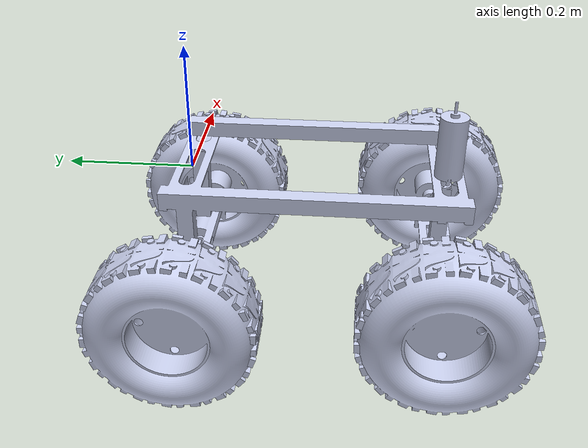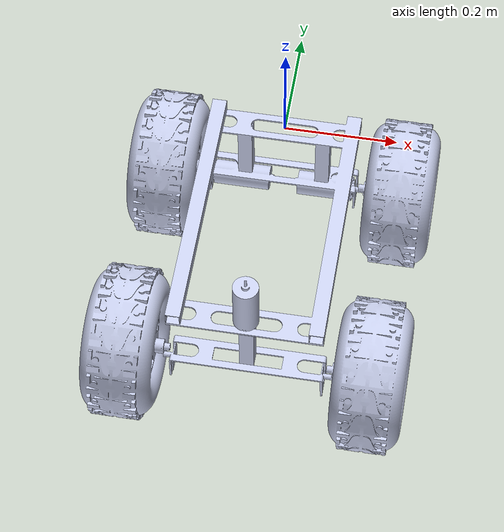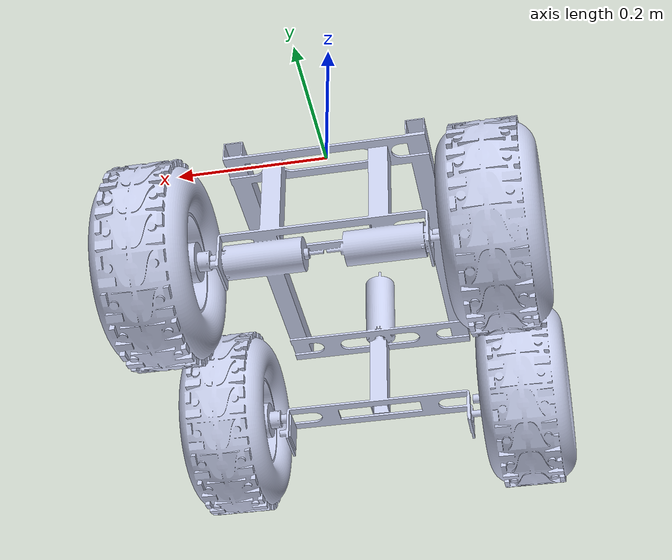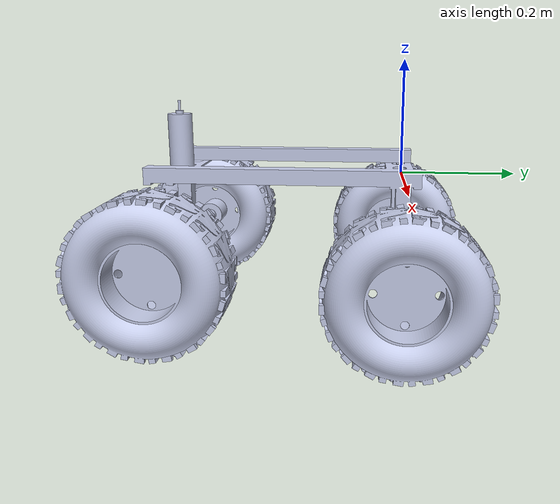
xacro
<?xml version="1.0"?>

<robot xmlns:xacro="http://ros.org/wiki/xacro" name="robot_base" >

<xacro:include filename="$(find agbot_description)/urdf/robot_essentials.xacro" />
<xacro:include filename="$(find agbot_description)/urdf/gazebo_essentials_base.xacro" />

<!-- setting up base link -->
  <link name="base_link">
    <inertial>
      <origin
        xyz="0 0 0"
        rpy="0 0 0" />
      <mass
        value="41.965" />
      <inertia
        ixx="0.5112"
        ixy="0.0009895"
        ixz="-0.0001284"
        iyy="0.03024"
        iyz="0.05488"
        izz="0.5196" />
    </inertial>
    <visual>
      <origin xyz="0 0 0" rpy="3.14159265359 0 0" />
      <geometry>
        <mesh filename="package://agbot_description/meshes/base.stl" />
      </geometry>
      <material name="">
        <color rgba=".79216 0.81961 0.9333 1" />
      </material>
    </visual>
    <collision>
      <origin xyz="0 0 0" rpy="3.14159265359 0 0" />
      <geometry>
        <mesh filename="package://agbot_description/meshes/base.stl" />
      </geometry>
    </collision>
  </link>

<!-- defining front -->
<xacro:robot_front />

<!-- defining wheels -->
<xacro:robot_wheel prefix="front_left"/>
<xacro:robot_wheel prefix="front_right"/>
<xacro:robot_wheel prefix="rear_left"/>
<xacro:robot_wheel prefix="rear_right"/>

<!-- defining wheel joints -->
<xacro:front_wheel_joint prefix="front_left" rotate="0 0 0" origin="0.231 0 0"/>
<xacro:front_wheel_joint prefix="front_right" rotate="0 3.14159265359 0" origin="-0.23 0 0"/>
<xacro:wheel_joint prefix="rear_left" rotate="0 0 0" origin=".231 0 -.15" axis="1 0 0"/>
<xacro:wheel_joint prefix="rear_right" rotate="0 3.14159265359 0" origin="-.23 0 -.15" axis="-1 0 0"/>

<!-- defining front joint -->
<xacro:front_joint rotate="3.14159265359 0 0" origin="0 -.40 -0.13"/>

<!-- declaring wheel actuators -->
<xacro:base_transmission prefix="rear_left"/>
<xacro:base_transmission prefix="rear_right"/>

<!-- declaring front actuator -->
<xacro:front_transmission/>

<!-- wheel friction -->
<xacro:wheel_friction prefix="front_left"/>
<xacro:wheel_friction prefix="front_right"/>
<xacro:wheel_friction prefix="rear_left"/>
<xacro:wheel_friction prefix="rear_right"/>

</robot>

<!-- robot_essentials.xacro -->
<robot xmlns:xacro="http://ros.org/wiki/xacro" name="robot_essentials" >

<!-- defining wheels -->
<xacro:macro name="robot_wheel" params="prefix">
  <link name="${prefix}_wheel">
    <inertial>
      <origin
        xyz="0 0 0"
        rpy="0 0 0" />
      <mass
        value="13.17189718" />
      <inertia
        ixx="0.146268139"
        ixy="7.31599134E-7"
        ixz="-1.0973987E-7"
        iyy="0.0977028878"
        iyz="-3.65799567E-8"
        izz="0.0977022293" />
    </inertial>
    <visual>
      <origin xyz="0 0 0" rpy="0 0 0" />
      <geometry>
        <mesh filename="package://agbot_description/meshes/wheel.stl" />
      </geometry>
      <material name="">
        <color rgba="0.79216 0.81961 0.9333 1" />
      </material>
    </visual>
    <collision>
      <origin
        xyz="0 0 0"
        rpy="0 0 0" />
      <geometry>
        <mesh filename="package://agbot_description/meshes/wheel.stl" />
      </geometry>
    </collision>
  </link>
</xacro:macro>

<!-- defining front axle -->
<xacro:macro name="robot_front" >
  <link name="front_axle">
    <inertial>
      <origin
        xyz="0 0 0"
        rpy="0 0 0" />
      <mass
        value="0.500898" />
      <inertia
        ixx="0.001038"
        ixy="-2.5E-11"
        ixz="3.5E-9"
        iyy="-4.98E-10"
        iyz="-2.68136447099727E-19"
        izz="0.00387" />
    </inertial>
    <visual>
      <origin xyz="0 0 0" rpy="0 0 0" />
      <geometry>
        <mesh filename="package://agbot_description/meshes/front.stl" />
      </geometry>
      <material name="">
        <color rgba="0.79216 0.81961 0.9333 1" />
      </material>
    </visual>
    <collision>
      <origin
        xyz="0 0 0"
        rpy="0 0 0" />
      <geometry>
        <mesh filename="package://agbot_description/meshes/front.stl" />
      </geometry>
    </collision>
  </link>
</xacro:macro>

<!-- defining front joints connected to base -->
<xacro:macro name="front_joint" params="rotate origin">
  <joint name="front_axle_joint" type="continuous">
    <axis xyz="0 0 1"/>
    <parent link ="base_link"/>
    <child link ="front_axle"/>
    <origin rpy ="${rotate}" xyz="${origin}"/>
  </joint>
</xacro:macro>

<!-- defining wheel joints connected to base -->
<xacro:macro name="wheel_joint" params="prefix rotate origin axis">
  <joint name="${prefix}_wheel_joint" type="continuous">
    <axis xyz="${axis}"/>
    <parent link ="base_link"/>
    <child link ="${prefix}_wheel"/>
    <origin rpy ="${rotate}" xyz="${origin}"/>
  </joint>
</xacro:macro>

<!-- defining wheel joints connected to front axle -->
<xacro:macro name="front_wheel_joint" params="prefix rotate origin">
  <joint name="${prefix}_wheel_joint" type="continuous">
    <axis xyz="1 0 0"/>
    <parent link ="front_axle"/>
    <child link ="${prefix}_wheel"/>
    <origin rpy ="${rotate}" xyz="${origin}"/>
  </joint>
</xacro:macro>

<!-- defining transmitions -->
<xacro:macro name="base_transmission" params="prefix ">

<transmission name="${prefix}_wheel_trans" type="SimpleTransmission">
  <type>transmission_interface/SimpleTransmission</type>
  <actuator name="${prefix}_wheel_motor">
   <hardwareInterface>hardware_interface/VelocityJointInterface</hardwareInterface>
   <mechanicalReduction>1</mechanicalReduction>
  </actuator>
  <joint name="${prefix}_wheel_joint">
   <hardwareInterface>hardware_interface/VelocityJointInterface</hardwareInterface>
  </joint>
</transmission>

</xacro:macro>

<!-- defining front axle transmission -->
<xacro:macro name="front_transmission">

<transmission name="front_trans" type="SimpleTransmission">
  <type>transmission_interface/SimpleTransmission</type>
  <actuator name="front_motor">
    <hardwareInterface>hardware_interface/EffortJointInterface</hardwareInterface>
    <mechanicalReduction>1</mechanicalReduction>
  </actuator>
  <joint name="front_axle_joint">
    <hardwareInterface>hardware_interface/EffortJointInterface</hardwareInterface>
  </joint>
</transmission>
</xacro:macro>

</robot>
